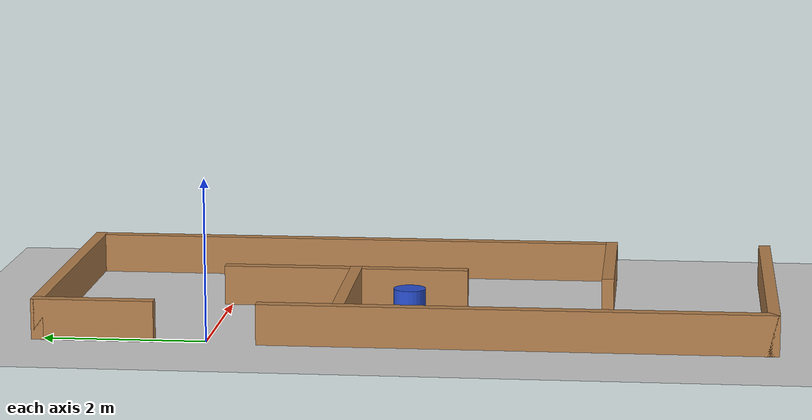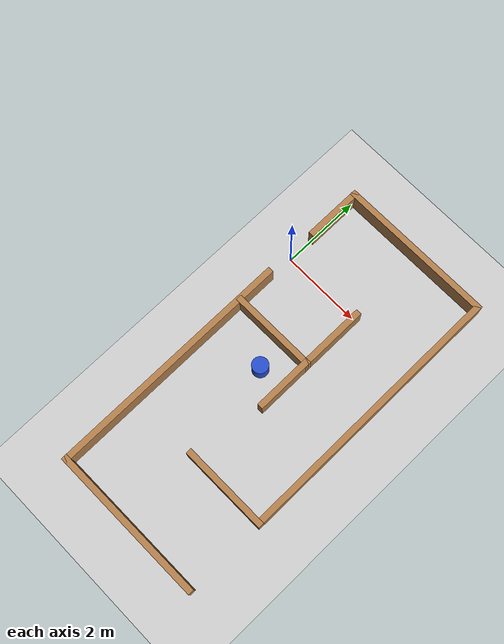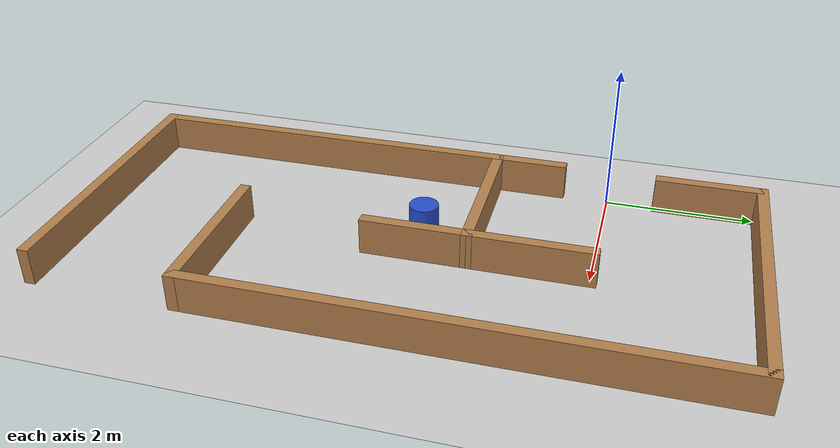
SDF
<sdf version="1.6">
 <world name="default">
  <light name="sun" type="directional">
   <pose>0 0 10 0 -0 0</pose>
   <diffuse>0.8 0.8 0.8 1</diffuse>
   <specular>0.2 0.2 0.2 1</specular>
   <attenuation>
    <range>1000</range>
    <constant>0.9</constant>
    <linear>0.01</linear>
    <quadratic>0.001</quadratic>
   </attenuation>
   <direction>-0.5 0.1 -0.9</direction>
  </light>
  <model name="ground_plane">
   <static>1</static>
   <link name="link">
    <collision name="collision">
     <geometry><plane><normal>0 0 1</normal><size>100 100</size></plane></geometry>
     <surface><friction><ode><mu>100</mu><mu2>50</mu2></ode></friction></surface>
    </collision>
    <visual name="visual">
     <cast_shadows>0</cast_shadows>
     <geometry><plane><normal>0 0 1</normal><size>100 100</size></plane></geometry>
     <material>
      <script><uri>file://media/materials/scripts/gazebo.material</uri><name>Gazebo/Grey</name></script>
     </material>
    </visual>
   </link>
  </model>
  <gravity>0 0 -9.8</gravity>
  <magnetic_field>6e-06 2.3e-05 -4.2e-05</magnetic_field>
  <atmosphere type="adiabatic"/>
  <physics name="default_physics" default="0" type="ode">
   <max_step_size>0.001</max_step_size>
   <real_time_factor>1</real_time_factor>
   <real_time_update_rate>1000</real_time_update_rate>
  </physics>
  <scene><ambient>0.4 0.4 0.4 1</ambient><background>0.7 0.7 0.7 1</background><shadows>1</shadows></scene>
  <audio><device>default</device></audio>
  <spherical_coordinates>
   <surface_model>EARTH_WGS84</surface_model>
   <latitude_deg>0</latitude_deg>
   <longitude_deg>0</longitude_deg>
   <elevation>0</elevation>
   <heading_deg>0</heading_deg>
  </spherical_coordinates>
  <model name="newMaze">
   <pose>1.92176 -2.35581 0 0 -0 1.57421</pose>
   <link name="Wall_0">
    <collision name="Wall_0_Collision">
     <geometry><box><size>4 0.15 0.5</size></box></geometry>
     <pose>0 0 0.25 0 -0 0</pose>
    </collision>
    <visual name="Wall_0_Visual">
     <pose>0 0 0.25 0 -0 0</pose>
     <geometry><box><size>4 0.15 0.5</size></box></geometry>
     <material>
      <script><uri>file://media/materials/scripts/gazebo.material</uri><name>Gazebo/Wood</name></script>
      <ambient>0.996078 0.47451 0.0196078 1</ambient>
     </material>
     <meta><layer>0</layer></meta>
    </visual>
    <pose>-4.425 0.02 0 0 -0 -1.5708</pose>
   </link>
   <link name="Wall_14">
    <collision name="Wall_14_Collision">
     <geometry><box><size>2.21002 0.15 0.5</size></box></geometry>
     <pose>0 0 0.25 0 -0 0</pose>
    </collision>
    <visual name="Wall_14_Visual">
     <pose>0 0 0.25 0 -0 0</pose>
     <geometry><box><size>2.21002 0.15 0.5</size></box></geometry>
     <material>
      <script><uri>file://media/materials/scripts/gazebo.material</uri><name>Gazebo/Wood</name></script>
      <ambient>0.996078 0.47451 0.0196078 1</ambient>
     </material>
     <meta><layer>0</layer></meta>
    </visual>
    <pose>0.77 0.875 0 0 -0 -1.56594</pose>
   </link>
   <link name="Wall_18">
    <collision name="Wall_18_Collision">
     <geometry><box><size>1.75 0.15 0.5</size></box></geometry>
     <pose>0 0 0.25 0 -0 0</pose>
    </collision>
    <visual name="Wall_18_Visual">
     <pose>0 0 0.25 0 -0 0</pose>
     <geometry><box><size>1.75 0.15 0.5</size></box></geometry>
     <material>
      <script><uri>file://media/materials/scripts/gazebo.material</uri><name>Gazebo/Wood</name></script>
      <ambient>0.996078 0.47451 0.0196078 1</ambient>
     </material>
     <meta><layer>0</layer></meta>
    </visual>
    <pose>1.575 -0.155 0 0 -0 0</pose>
   </link>
   <link name="Wall_2">
    <collision name="Wall_2_Collision">
     <geometry><box><size>6.25 0.15 0.5</size></box></geometry>
     <pose>0 0 0.25 0 -0 0</pose>
    </collision>
    <visual name="Wall_2_Visual">
     <pose>0 0 0.25 0 -0 0</pose>
     <geometry><box><size>6.25 0.15 0.5</size></box></geometry>
     <material>
      <script><uri>file://media/materials/scripts/gazebo.material</uri><name>Gazebo/Wood</name></script>
      <ambient>0.996078 0.47451 0.0196078 1</ambient>
     </material>
     <meta><layer>0</layer></meta>
    </visual>
    <pose>-1.375 1.945 0 0 -0 0</pose>
   </link>
   <link name="Wall_20">
    <collision name="Wall_20_Collision">
     <geometry><box><size>2.25 0.15 0.5</size></box></geometry>
     <pose>0 0 0.25 0 -0 0</pose>
    </collision>
    <visual name="Wall_20_Visual">
     <pose>0 0 0.25 0 -0 0</pose>
     <geometry><box><size>2.25 0.15 0.5</size></box></geometry>
     <material>
      <script><uri>file://media/materials/scripts/gazebo.material</uri><name>Gazebo/Wood</name></script>
      <ambient>0.996078 0.47451 0.0196078 1</ambient>
     </material>
     <meta><layer>0</layer></meta>
    </visual>
    <pose>-2.425 -0.895 0 0 -0 1.5708</pose>
   </link>
   <link name="Wall_24">
    <collision name="Wall_24_Collision">
     <geometry><box><size>1.5 0.15 0.5</size></box></geometry>
     <pose>0 0 0.25 0 -0 0</pose>
    </collision>
    <visual name="Wall_24_Visual">
     <pose>0 0 0.25 0 -0 0</pose>
     <geometry><box><size>1.5 0.15 0.5</size></box></geometry>
     <material>
      <script><uri>file://media/materials/scripts/gazebo.material</uri><name>Gazebo/Wood</name></script>
      <ambient>0.996078 0.47451 0.0196078 1</ambient>
     </material>
     <meta><layer>0</layer></meta>
    </visual>
    <pose>0.1 -0.155 0 0 -0 3.14159</pose>
   </link>
   <link name="Wall_5">
    <collision name="Wall_5_Collision">
     <geometry><box><size>1.5 0.15 0.5</size></box></geometry>
     <pose>0 0 0.25 0 -0 0</pose>
    </collision>
    <visual name="Wall_5_Visual">
     <pose>0 0 0.25 0 -0 0</pose>
     <geometry><box><size>1.5 0.15 0.5</size></box></geometry>
     <material>
      <script><uri>file://media/materials/scripts/gazebo.material</uri><name>Gazebo/Wood</name></script>
      <ambient>0.996078 0.47451 0.0196078 1</ambient>
     </material>
     <meta><layer>0</layer></meta>
    </visual>
    <pose>3.75 1.905 0 0 -0 0</pose>
   </link>
   <link name="Wall_6">
    <collision name="Wall_6_Collision">
     <geometry><box><size>4 0.15 0.5</size></box></geometry>
     <pose>0 0 0.25 0 -0 0</pose>
    </collision>
    <visual name="Wall_6_Visual">
     <pose>0 0 0.25 0 -0 0</pose>
     <geometry><box><size>4 0.15 0.5</size></box></geometry>
     <material>
      <script><uri>file://media/materials/scripts/gazebo.material</uri><name>Gazebo/Wood</name></script>
      <ambient>0.996078 0.47451 0.0196078 1</ambient>
     </material>
     <meta><layer>0</layer></meta>
    </visual>
    <pose>4.425 -0.02 0 0 -0 -1.5708</pose>
   </link>
   <link name="Wall_7">
    <collision name="Wall_7_Collision">
     <geometry><box><size>7 0.15 0.5</size></box></geometry>
     <pose>0 0 0.25 0 -0 0</pose>
    </collision>
    <visual name="Wall_7_Visual">
     <pose>0 0 0.25 0 -0 0</pose>
     <geometry><box><size>7 0.15 0.5</size></box></geometry>
     <material>
      <script><uri>file://media/materials/scripts/gazebo.material</uri><name>Gazebo/Wood</name></script>
      <ambient>0.996078 0.47451 0.0196078 1</ambient>
     </material>
     <meta><layer>0</layer></meta>
    </visual>
    <pose>1 -1.945 0 0 -0 3.14159</pose>
   </link>
   <static>1</static>
  </model>
  <model name="unit_cylinder">
   <link name="link">
    <inertial>
     <mass>1</mass>
     <inertia><ixx>0.145833</ixx><ixy>0</ixy><ixz>0</ixz><iyy>0.145833</iyy><iyz>0</iyz><izz>0.125</izz></inertia>
    </inertial>
    <visual name="visual">
     <geometry><cylinder><radius>0.2</radius><length>0.4</length></cylinder></geometry>
     <material>
      <script><name>Gazebo/Blue</name><uri>file://media/materials/scripts/gazebo.material</uri></script>
      <shader type="vertex"><normal_map>__default__</normal_map></shader>
      <ambient>0.2 0.4 0.7 1</ambient>
      <diffuse>0.7 0.7 0.7 1</diffuse>
      <specular>0.1 0.1 0.9 1</specular>
      <emissive>0 0 0 1</emissive>
     </material>
    </visual>
    <collision name="collision">
     <geometry><cylinder><radius>0.2</radius><length>0.4</length></cylinder></geometry>
     <surface>
      <friction>
       <ode><mu>1</mu><mu2>1</mu2><fdir1>0 0 0</fdir1><slip1>0</slip1><slip2>0</slip2></ode>
       <torsional>
        <coefficient>1</coefficient>
        <patch_radius>0</patch_radius>
        <surface_radius>0</surface_radius>
        <use_patch_radius>1</use_patch_radius>
        <ode><slip>0</slip></ode>
       </torsional>
      </friction>
      <bounce><restitution_coefficient>0</restitution_coefficient><threshold>1e+06</threshold></bounce>
      <contact>
       <collide_without_contact>0</collide_without_contact>
       <collide_without_contact_bitmask>1</collide_without_contact_bitmask>
       <collide_bitmask>1</collide_bitmask>
       <ode>
        <soft_cfm>0</soft_cfm>
        <soft_erp>0.2</soft_erp>
        <kp>1e+13</kp>
        <kd>1</kd>
        <max_vel>0.01</max_vel>
        <min_depth>0</min_depth>
       </ode>
       <bullet>
        <split_impulse>1</split_impulse>
        <split_impulse_penetration_threshold>-0.01</split_impulse_penetration_threshold>
        <soft_cfm>0</soft_cfm>
        <soft_erp>0.2</soft_erp>
        <kp>1e+13</kp>
        <kd>1</kd>
       </bullet>
      </contact>
     </surface>
    </collision>
   </link>
   <static>0</static>
   <pose>1.39068 -2.33045 0.199991 0 -0 0</pose>
  </model>
 </world>
</sdf>
